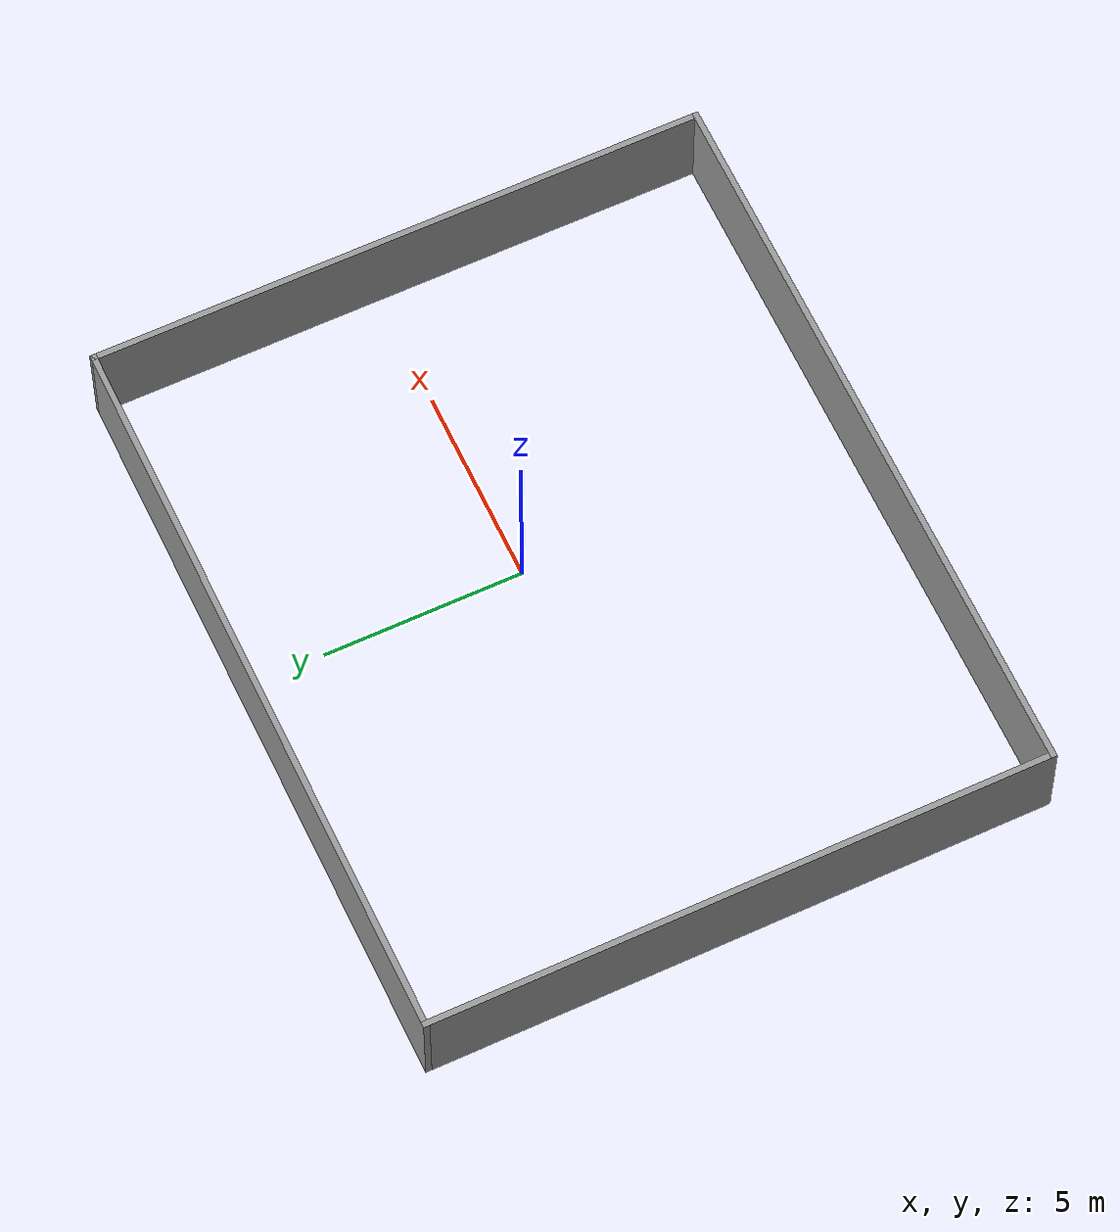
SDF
<?xml version='1.0'?>
<sdf version='1.7'>
  <model name='Room'>
    <pose>-1.10396 -0.578202 0 0 -0 0</pose>
    <link name='Wall_3'>
      <collision name='Wall_3_Collision'>
        <geometry>
          <box>
            <size>15.5 0.15 2.5</size>
          </box>
        </geometry>
        <pose>0 0 1.25 0 -0 0</pose>
      </collision>
      <visual name='Wall_3_Visual'>
        <pose>0 0 1.25 0 -0 0</pose>
        <geometry>
          <box>
            <size>15.5 0.15 2.5</size>
          </box>
        </geometry>
        <material>
          <script>
            <uri>file://media/materials/scripts/gazebo.material</uri>
            <name>Gazebo/Grey</name>
          </script>
          <ambient>1 1 1 1</ambient>
        </material>
        <meta>
          <layer>0</layer>
        </meta>
      </visual>
      <pose>-9.175 0 0 0 -0 -1.5708</pose>
    </link>
    <link name='Wall_4'>
      <collision name='Wall_4_Collision'>
        <geometry>
          <box>
            <size>18.5 0.15 2.5</size>
          </box>
        </geometry>
        <pose>0 0 1.25 0 -0 0</pose>
      </collision>
      <visual name='Wall_4_Visual'>
        <pose>0 0 1.25 0 -0 0</pose>
        <geometry>
          <box>
            <size>18.5 0.15 2.5</size>
          </box>
        </geometry>
        <material>
          <script>
            <uri>file://media/materials/scripts/gazebo.material</uri>
            <name>Gazebo/Grey</name>
          </script>
          <ambient>1 1 1 1</ambient>
        </material>
        <meta>
          <layer>0</layer>
        </meta>
      </visual>
      <pose>0 -7.675 0 0 -0 0</pose>
    </link>
    <link name='Wall_5'>
      <collision name='Wall_5_Collision'>
        <geometry>
          <box>
            <size>15.5 0.15 2.5</size>
          </box>
        </geometry>
        <pose>0 0 1.25 0 -0 0</pose>
      </collision>
      <visual name='Wall_5_Visual'>
        <pose>0 0 1.25 0 -0 0</pose>
        <geometry>
          <box>
            <size>15.5 0.15 2.5</size>
          </box>
        </geometry>
        <material>
          <script>
            <uri>file://media/materials/scripts/gazebo.material</uri>
            <name>Gazebo/Grey</name>
          </script>
          <ambient>1 1 1 1</ambient>
        </material>
        <meta>
          <layer>0</layer>
        </meta>
      </visual>
      <pose>9.175 0 0 0 -0 1.5708</pose>
    </link>
    <link name='Wall_6'>
      <collision name='Wall_6_Collision'>
        <geometry>
          <box>
            <size>18.5 0.15 2.5</size>
          </box>
        </geometry>
        <pose>0 0 1.25 0 -0 0</pose>
      </collision>
      <visual name='Wall_6_Visual'>
        <pose>0 0 1.25 0 -0 0</pose>
        <geometry>
          <box>
            <size>18.5 0.15 2.5</size>
          </box>
        </geometry>
        <material>
          <script>
            <uri>file://media/materials/scripts/gazebo.material</uri>
            <name>Gazebo/Grey</name>
          </script>
          <ambient>1 1 1 1</ambient>
        </material>
        <meta>
          <layer>0</layer>
        </meta>
      </visual>
      <pose>0 7.675 0 0 -0 3.14159</pose>
    </link>
    <static>1</static>
  </model>
</sdf>
